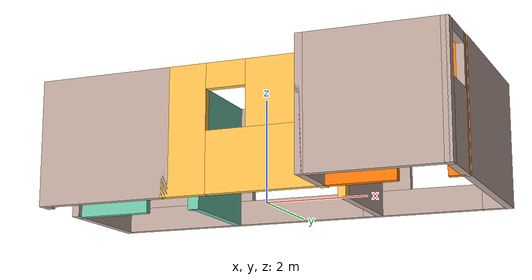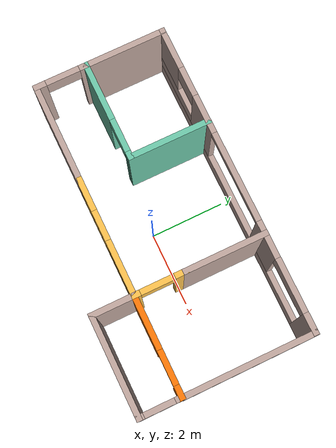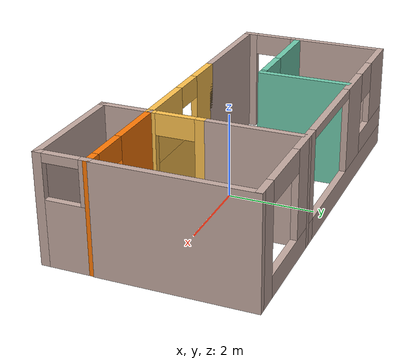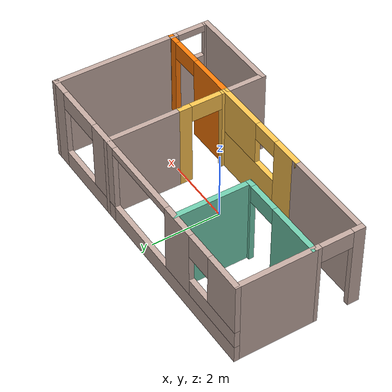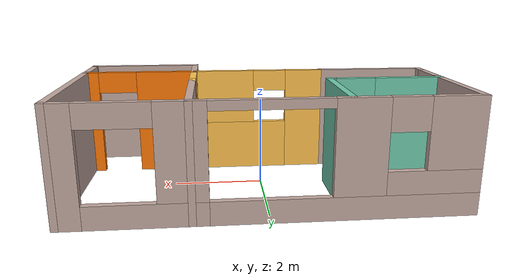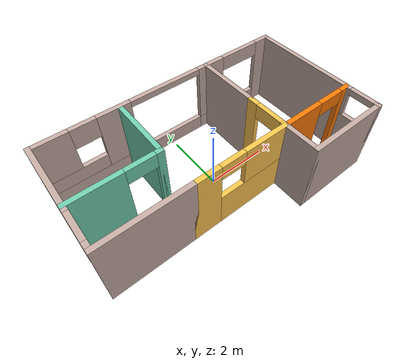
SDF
<?xml version='1.0'?>
<sdf version='1.6'>
  <model name='Building'>
    <pose frame=''>0 0 0 0 -0 0</pose>
    <link name='Wall_16'>
      <collision name='Wall_16_Collision'>
        <geometry>
          <box>
            <size>2.25 0.15 2.5</size>
          </box>
        </geometry>
        <pose frame=''>0 0 1.25 0 -0 0</pose>
      </collision>
      <visual name='Wall_16_Visual'>
        <pose frame=''>0 0 1.25 0 -0 0</pose>
        <geometry>
          <box>
            <size>2.25 0.15 2.5</size>
          </box>
        </geometry>
        <material>
          <script>
            <uri>file://media/materials/scripts/gazebo.material</uri>
            <name>Gazebo/Grey</name>
          </script>
          <ambient>0.760784 0.662745 0.627451 1</ambient>
        </material>
        <meta>
          <layer>0</layer>
        </meta>
      </visual>
      <pose frame=''>-4.15661 1.225 0 0 0 -1.5708</pose>
    </link>
    <link name='Wall_17'>
      <pose frame=''>-2.85661 0.175 0 0 -0 0</pose>
      <visual name='Wall_17_Visual_0'>
        <pose frame=''>-0.564012 0 1.25 0 -0 0</pose>
        <geometry>
          <box>
            <size>1.62197 0.15 2.5</size>
          </box>
        </geometry>
        <material>
          <script>
            <uri>file://media/materials/scripts/gazebo.material</uri>
            <name>Gazebo/Grey</name>
          </script>
          <ambient>0.435294 0.796078 0.67451 1</ambient>
        </material>
        <meta>
          <layer>0</layer>
        </meta>
      </visual>
      <collision name='Wall_17_Collision_0'>
        <geometry>
          <box>
            <size>1.62197 0.15 2.5</size>
          </box>
        </geometry>
        <pose frame=''>-0.564012 0 1.25 0 -0 0</pose>
      </collision>
      <visual name='Wall_17_Visual_1'>
        <pose frame=''>1.26099 0 1.25 0 -0 0</pose>
        <geometry>
          <box>
            <size>0.228025 0.15 2.5</size>
          </box>
        </geometry>
        <material>
          <script>
            <uri>file://media/materials/scripts/gazebo.material</uri>
            <name>Gazebo/Grey</name>
          </script>
          <ambient>0.435294 0.796078 0.67451 1</ambient>
        </material>
        <meta>
          <layer>0</layer>
        </meta>
      </visual>
      <collision name='Wall_17_Collision_1'>
        <geometry>
          <box>
            <size>0.228025 0.15 2.5</size>
          </box>
        </geometry>
        <pose frame=''>1.26099 0 1.25 0 -0 0</pose>
      </collision>
      <visual name='Wall_17_Visual_2'>
        <pose frame=''>0.696975 0 2.25 0 -0 0</pose>
        <geometry>
          <box>
            <size>0.9 0.15 0.5</size>
          </box>
        </geometry>
        <material>
          <script>
            <uri>file://media/materials/scripts/gazebo.material</uri>
            <name>Gazebo/Grey</name>
          </script>
          <ambient>0.435294 0.796078 0.67451 1</ambient>
        </material>
        <meta>
          <layer>0</layer>
        </meta>
      </visual>
      <collision name='Wall_17_Collision_2'>
        <geometry>
          <box>
            <size>0.9 0.15 0.5</size>
          </box>
        </geometry>
        <pose frame=''>0.696975 0 2.25 0 -0 0</pose>
      </collision>
    </link>
    <link name='Wall_19'>
      <pose frame=''>-0.006613 -1.175 0 0 -0 0</pose>
      <visual name='Wall_19_Visual_0'>
        <pose frame=''>-1.16987 0 1.25 0 -0 0</pose>
        <geometry>
          <box>
            <size>0.91025 0.15 2.5</size>
          </box>
        </geometry>
        <material>
          <script>
            <uri>file://media/materials/scripts/gazebo.material</uri>
            <name>Gazebo/Grey</name>
          </script>
          <ambient>1 0.764706 0.305882 1</ambient>
        </material>
        <meta>
          <layer>0</layer>
        </meta>
      </visual>
      <collision name='Wall_19_Collision_0'>
        <geometry>
          <box>
            <size>0.91025 0.15 2.5</size>
          </box>
        </geometry>
        <pose frame=''>-1.16987 0 1.25 0 -0 0</pose>
      </collision>
      <visual name='Wall_19_Visual_1'>
        <pose frame=''>0.455125 0 0.6 0 -0 0</pose>
        <geometry>
          <box>
            <size>2.33975 0.15 1.2</size>
          </box>
        </geometry>
        <material>
          <script>
            <uri>file://media/materials/scripts/gazebo.material</uri>
            <name>Gazebo/Grey</name>
          </script>
          <ambient>1 0.764706 0.305882 1</ambient>
        </material>
        <meta>
          <layer>0</layer>
        </meta>
      </visual>
      <collision name='Wall_19_Collision_1'>
        <geometry>
          <box>
            <size>2.33975 0.15 1.2</size>
          </box>
        </geometry>
        <pose frame=''>0.455125 0 0.6 0 -0 0</pose>
      </collision>
      <visual name='Wall_19_Visual_2'>
        <pose frame=''>0.855125 0 1.85 0 -0 0</pose>
        <geometry>
          <box>
            <size>1.53975 0.15 1.3</size>
          </box>
        </geometry>
        <material>
          <script>
            <uri>file://media/materials/scripts/gazebo.material</uri>
            <name>Gazebo/Grey</name>
          </script>
          <ambient>1 0.764706 0.305882 1</ambient>
        </material>
        <meta>
          <layer>0</layer>
        </meta>
      </visual>
      <collision name='Wall_19_Collision_2'>
        <geometry>
          <box>
            <size>1.53975 0.15 1.3</size>
          </box>
        </geometry>
        <pose frame=''>0.855125 0 1.85 0 -0 0</pose>
      </collision>
      <visual name='Wall_19_Visual_3'>
        <pose frame=''>-0.31475 0 2.25 0 -0 0</pose>
        <geometry>
          <box>
            <size>0.8 0.15 0.5</size>
          </box>
        </geometry>
        <material>
          <script>
            <uri>file://media/materials/scripts/gazebo.material</uri>
            <name>Gazebo/Grey</name>
          </script>
          <ambient>1 0.764706 0.305882 1</ambient>
        </material>
        <meta>
          <layer>0</layer>
        </meta>
      </visual>
      <collision name='Wall_19_Collision_3'>
        <geometry>
          <box>
            <size>0.8 0.15 0.5</size>
          </box>
        </geometry>
        <pose frame=''>-0.31475 0 2.25 0 -0 0</pose>
      </collision>
    </link>
    <link name='Wall_20'>
      <pose frame=''>1.54339 -0.5 0 0 -0 1.5708</pose>
      <visual name='Wall_20_Visual_0'>
        <pose frame=''>-0.634187 0 1.25 0 -0 0</pose>
        <geometry>
          <box>
            <size>0.231625 0.15 2.5</size>
          </box>
        </geometry>
        <material>
          <script>
            <uri>file://media/materials/scripts/gazebo.material</uri>
            <name>Gazebo/Grey</name>
          </script>
          <ambient>1 0.764706 0.305882 1</ambient>
        </material>
        <meta>
          <layer>0</layer>
        </meta>
      </visual>
      <collision name='Wall_20_Collision_0'>
        <geometry>
          <box>
            <size>0.231625 0.15 2.5</size>
          </box>
        </geometry>
        <pose frame=''>-0.634187 0 1.25 0 -0 0</pose>
      </collision>
      <visual name='Wall_20_Visual_1'>
        <pose frame=''>0.565813 0 1.25 0 -0 0</pose>
        <geometry>
          <box>
            <size>0.368375 0.15 2.5</size>
          </box>
        </geometry>
        <material>
          <script>
            <uri>file://media/materials/scripts/gazebo.material</uri>
            <name>Gazebo/Grey</name>
          </script>
          <ambient>1 0.764706 0.305882 1</ambient>
        </material>
        <meta>
          <layer>0</layer>
        </meta>
      </visual>
      <collision name='Wall_20_Collision_1'>
        <geometry>
          <box>
            <size>0.368375 0.15 2.5</size>
          </box>
        </geometry>
        <pose frame=''>0.565813 0 1.25 0 -0 0</pose>
      </collision>
      <visual name='Wall_20_Visual_2'>
        <pose frame=''>-0.068375 0 2.25 0 -0 0</pose>
        <geometry>
          <box>
            <size>0.9 0.15 0.5</size>
          </box>
        </geometry>
        <material>
          <script>
            <uri>file://media/materials/scripts/gazebo.material</uri>
            <name>Gazebo/Grey</name>
          </script>
          <ambient>1 0.764706 0.305882 1</ambient>
        </material>
        <meta>
          <layer>0</layer>
        </meta>
      </visual>
      <collision name='Wall_20_Collision_2'>
        <geometry>
          <box>
            <size>0.9 0.15 0.5</size>
          </box>
        </geometry>
        <pose frame=''>-0.068375 0 2.25 0 -0 0</pose>
      </collision>
    </link>
    <link name='Wall_22'>
      <collision name='Wall_22_Collision'>
        <geometry>
          <box>
            <size>3.5 0.15 2.5</size>
          </box>
        </geometry>
        <pose frame=''>0 0 1.25 0 -0 0</pose>
      </collision>
      <visual name='Wall_22_Visual'>
        <pose frame=''>0 0 1.25 0 -0 0</pose>
        <geometry>
          <box>
            <size>3.5 0.15 2.5</size>
          </box>
        </geometry>
        <material>
          <script>
            <uri>file://media/materials/scripts/gazebo.material</uri>
            <name>Gazebo/Grey</name>
          </script>
          <ambient>0.760784 0.662745 0.627451 1</ambient>
        </material>
        <meta>
          <layer>0</layer>
        </meta>
      </visual>
      <pose frame=''>4.15661 0.6 0 0 -0 1.5708</pose>
    </link>
    <link name='Wall_23'>
      <pose frame=''>-0.006613 2.275 0 0 -0 3.14159</pose>
      <visual name='Wall_23_Visual_0'>
        <pose frame=''>-3.9381 0 1.25 0 -0 0</pose>
        <geometry>
          <box>
            <size>0.573805 0.15 2.5</size>
          </box>
        </geometry>
        <material>
          <script>
            <uri>file://media/materials/scripts/gazebo.material</uri>
            <name>Gazebo/Grey</name>
          </script>
          <ambient>0.760784 0.662745 0.627451 1</ambient>
        </material>
        <meta>
          <layer>0</layer>
        </meta>
      </visual>
      <collision name='Wall_23_Collision_0'>
        <geometry>
          <box>
            <size>0.573805 0.15 2.5</size>
          </box>
        </geometry>
        <pose frame=''>-3.9381 0 1.25 0 -0 0</pose>
      </collision>
      <visual name='Wall_23_Visual_1'>
        <pose frame=''>-2.43037 0 0.25 0 -0 0</pose>
        <geometry>
          <box>
            <size>2.44166 0.15 0.5</size>
          </box>
        </geometry>
        <material>
          <script>
            <uri>file://media/materials/scripts/gazebo.material</uri>
            <name>Gazebo/Grey</name>
          </script>
          <ambient>0.760784 0.662745 0.627451 1</ambient>
        </material>
        <meta>
          <layer>0</layer>
        </meta>
      </visual>
      <collision name='Wall_23_Collision_1'>
        <geometry>
          <box>
            <size>2.44166 0.15 0.5</size>
          </box>
        </geometry>
        <pose frame=''>-2.43037 0 0.25 0 -0 0</pose>
      </collision>
      <visual name='Wall_23_Visual_2'>
        <pose frame=''>1.50773 0 0.25 0 -0 0</pose>
        <geometry>
          <box>
            <size>5.43454 0.15 0.5</size>
          </box>
        </geometry>
        <material>
          <script>
            <uri>file://media/materials/scripts/gazebo.material</uri>
            <name>Gazebo/Grey</name>
          </script>
          <ambient>0.760784 0.662745 0.627451 1</ambient>
        </material>
        <meta>
          <layer>0</layer>
        </meta>
      </visual>
      <collision name='Wall_23_Collision_2'>
        <geometry>
          <box>
            <size>5.43454 0.15 0.5</size>
          </box>
        </geometry>
        <pose frame=''>1.50773 0 0.25 0 -0 0</pose>
      </collision>
      <visual name='Wall_23_Visual_3'>
        <pose frame=''>1.74974 0 1.5 0 -0 0</pose>
        <geometry>
          <box>
            <size>1.06456 0.15 2</size>
          </box>
        </geometry>
        <material>
          <script>
            <uri>file://media/materials/scripts/gazebo.material</uri>
            <name>Gazebo/Grey</name>
          </script>
          <ambient>0.760784 0.662745 0.627451 1</ambient>
        </material>
        <meta>
          <layer>0</layer>
        </meta>
      </visual>
      <collision name='Wall_23_Collision_3'>
        <geometry>
          <box>
            <size>1.06456 0.15 2</size>
          </box>
        </geometry>
        <pose frame=''>1.74974 0 1.5 0 -0 0</pose>
      </collision>
      <visual name='Wall_23_Visual_4'>
        <pose frame=''>3.25351 0 0.75 0 -0 0</pose>
        <geometry>
          <box>
            <size>1.94297 0.15 0.5</size>
          </box>
        </geometry>
        <material>
          <script>
            <uri>file://media/materials/scripts/gazebo.material</uri>
            <name>Gazebo/Grey</name>
          </script>
          <ambient>0.760784 0.662745 0.627451 1</ambient>
        </material>
        <meta>
          <layer>0</layer>
        </meta>
      </visual>
      <collision name='Wall_23_Collision_4'>
        <geometry>
          <box>
            <size>1.94297 0.15 0.5</size>
          </box>
        </geometry>
        <pose frame=''>3.25351 0 0.75 0 -0 0</pose>
      </collision>
      <visual name='Wall_23_Visual_5'>
        <pose frame=''>-1.71037 0 1.5 0 -0 0</pose>
        <geometry>
          <box>
            <size>1.00166 0.15 2</size>
          </box>
        </geometry>
        <material>
          <script>
            <uri>file://media/materials/scripts/gazebo.material</uri>
            <name>Gazebo/Grey</name>
          </script>
          <ambient>0.760784 0.662745 0.627451 1</ambient>
        </material>
        <meta>
          <layer>0</layer>
        </meta>
      </visual>
      <collision name='Wall_23_Collision_5'>
        <geometry>
          <box>
            <size>1.00166 0.15 2</size>
          </box>
        </geometry>
        <pose frame=''>-1.71037 0 1.5 0 -0 0</pose>
      </collision>
      <visual name='Wall_23_Visual_6'>
        <pose frame=''>-1.71037 0 1.5 0 -0 0</pose>
        <geometry>
          <box>
            <size>1.00166 0.15 2</size>
          </box>
        </geometry>
        <material>
          <script>
            <uri>file://media/materials/scripts/gazebo.material</uri>
            <name>Gazebo/Grey</name>
          </script>
          <ambient>0.760784 0.662745 0.627451 1</ambient>
        </material>
        <meta>
          <layer>0</layer>
        </meta>
      </visual>
      <collision name='Wall_23_Collision_6'>
        <geometry>
          <box>
            <size>1.00166 0.15 2</size>
          </box>
        </geometry>
        <pose frame=''>-1.71037 0 1.5 0 -0 0</pose>
      </collision>
      <visual name='Wall_23_Visual_7'>
        <pose frame=''>3.65351 0 1.75 0 -0 0</pose>
        <geometry>
          <box>
            <size>1.14298 0.15 1.5</size>
          </box>
        </geometry>
        <material>
          <script>
            <uri>file://media/materials/scripts/gazebo.material</uri>
            <name>Gazebo/Grey</name>
          </script>
          <ambient>0.760784 0.662745 0.627451 1</ambient>
        </material>
        <meta>
          <layer>0</layer>
        </meta>
      </visual>
      <collision name='Wall_23_Collision_7'>
        <geometry>
          <box>
            <size>1.14298 0.15 1.5</size>
          </box>
        </geometry>
        <pose frame=''>3.65351 0 1.75 0 -0 0</pose>
      </collision>
      <visual name='Wall_23_Visual_8'>
        <pose frame=''>2.68202 0 2.15 0 -0 0</pose>
        <geometry>
          <box>
            <size>0.8 0.15 0.7</size>
          </box>
        </geometry>
        <material>
          <script>
            <uri>file://media/materials/scripts/gazebo.material</uri>
            <name>Gazebo/Grey</name>
          </script>
          <ambient>0.760784 0.662745 0.627451 1</ambient>
        </material>
        <meta>
          <layer>0</layer>
        </meta>
      </visual>
      <collision name='Wall_23_Collision_8'>
        <geometry>
          <box>
            <size>0.8 0.15 0.7</size>
          </box>
        </geometry>
        <pose frame=''>2.68202 0 2.15 0 -0 0</pose>
      </collision>
      <visual name='Wall_23_Visual_9'>
        <pose frame=''>-2.9312 0 2.25 0 -0 0</pose>
        <geometry>
          <box>
            <size>1.44 0.15 0.5</size>
          </box>
        </geometry>
        <material>
          <script>
            <uri>file://media/materials/scripts/gazebo.material</uri>
            <name>Gazebo/Grey</name>
          </script>
          <ambient>0.760784 0.662745 0.627451 1</ambient>
        </material>
        <meta>
          <layer>0</layer>
        </meta>
      </visual>
      <collision name='Wall_23_Collision_9'>
        <geometry>
          <box>
            <size>1.44 0.15 0.5</size>
          </box>
        </geometry>
        <pose frame=''>-2.9312 0 2.25 0 -0 0</pose>
      </collision>
      <visual name='Wall_23_Visual_10'>
        <pose frame=''>0.003963 0 2.4 0 -0 0</pose>
        <geometry>
          <box>
            <size>2.427 0.15 0.2</size>
          </box>
        </geometry>
        <material>
          <script>
            <uri>file://media/materials/scripts/gazebo.material</uri>
            <name>Gazebo/Grey</name>
          </script>
          <ambient>0.760784 0.662745 0.627451 1</ambient>
        </material>
        <meta>
          <layer>0</layer>
        </meta>
      </visual>
      <collision name='Wall_23_Collision_10'>
        <geometry>
          <box>
            <size>2.427 0.15 0.2</size>
          </box>
        </geometry>
        <pose frame=''>0.003963 0 2.4 0 -0 0</pose>
      </collision>
      <visual name='Wall_23_Visual_11'>
        <pose frame=''>0.003963 0 2.4 0 -0 0</pose>
        <geometry>
          <box>
            <size>2.427 0.15 0.2</size>
          </box>
        </geometry>
        <material>
          <script>
            <uri>file://media/materials/scripts/gazebo.material</uri>
            <name>Gazebo/Grey</name>
          </script>
          <ambient>0.760784 0.662745 0.627451 1</ambient>
        </material>
        <meta>
          <layer>0</layer>
        </meta>
      </visual>
      <collision name='Wall_23_Collision_11'>
        <geometry>
          <box>
            <size>2.427 0.15 0.2</size>
          </box>
        </geometry>
        <pose frame=''>0.003963 0 2.4 0 -0 0</pose>
      </collision>
    </link>
    <link name='Wall_25'>
      <pose frame=''>-4.15661 -0.5 0 0 0 -1.5708</pose>
      <visual name='Wall_25_Visual_0'>
        <pose frame=''>-0.618713 0 1.25 0 -0 0</pose>
        <geometry>
          <box>
            <size>0.262575 0.15 2.5</size>
          </box>
        </geometry>
        <material>
          <script>
            <uri>file://media/materials/scripts/gazebo.material</uri>
            <name>Gazebo/Grey</name>
          </script>
          <ambient>0.760784 0.662745 0.627451 1</ambient>
        </material>
        <meta>
          <layer>0</layer>
        </meta>
      </visual>
      <collision name='Wall_25_Collision_0'>
        <geometry>
          <box>
            <size>0.262575 0.15 2.5</size>
          </box>
        </geometry>
        <pose frame=''>-0.618713 0 1.25 0 -0 0</pose>
      </collision>
      <visual name='Wall_25_Visual_1'>
        <pose frame=''>0.581287 0 1.25 0 -0 0</pose>
        <geometry>
          <box>
            <size>0.337425 0.15 2.5</size>
          </box>
        </geometry>
        <material>
          <script>
            <uri>file://media/materials/scripts/gazebo.material</uri>
            <name>Gazebo/Grey</name>
          </script>
          <ambient>0.760784 0.662745 0.627451 1</ambient>
        </material>
        <meta>
          <layer>0</layer>
        </meta>
      </visual>
      <collision name='Wall_25_Collision_1'>
        <geometry>
          <box>
            <size>0.337425 0.15 2.5</size>
          </box>
        </geometry>
        <pose frame=''>0.581287 0 1.25 0 -0 0</pose>
      </collision>
      <visual name='Wall_25_Visual_2'>
        <pose frame=''>-0.037425 0 2.25 0 -0 0</pose>
        <geometry>
          <box>
            <size>0.9 0.15 0.5</size>
          </box>
        </geometry>
        <material>
          <script>
            <uri>file://media/materials/scripts/gazebo.material</uri>
            <name>Gazebo/Grey</name>
          </script>
          <ambient>0.760784 0.662745 0.627451 1</ambient>
        </material>
        <meta>
          <layer>0</layer>
        </meta>
      </visual>
      <collision name='Wall_25_Collision_2'>
        <geometry>
          <box>
            <size>0.9 0.15 0.5</size>
          </box>
        </geometry>
        <pose frame=''>-0.037425 0 2.25 0 -0 0</pose>
      </collision>
    </link>
    <link name='Wall_26'>
      <collision name='Wall_26_Collision'>
        <geometry>
          <box>
            <size>2.75 0.15 2.5</size>
          </box>
        </geometry>
        <pose frame=''>0 0 1.25 0 -0 0</pose>
      </collision>
      <visual name='Wall_26_Visual'>
        <pose frame=''>0 0 1.25 0 -0 0</pose>
        <geometry>
          <box>
            <size>2.75 0.15 2.5</size>
          </box>
        </geometry>
        <material>
          <script>
            <uri>file://media/materials/scripts/gazebo.material</uri>
            <name>Gazebo/Grey</name>
          </script>
          <ambient>0.760784 0.662745 0.627451 1</ambient>
        </material>
        <meta>
          <layer>0</layer>
        </meta>
      </visual>
      <pose frame=''>-2.85661 -1.175 0 0 -0 0</pose>
    </link>
    <link name='Wall_28'>
      <pose frame=''>2.84339 -1.175 0 0 -0 0</pose>
      <visual name='Wall_28_Visual_0'>
        <pose frame=''>-0.636763 0 1.25 0 -0 0</pose>
        <geometry>
          <box>
            <size>1.47647 0.15 2.5</size>
          </box>
        </geometry>
        <material>
          <script>
            <uri>file://media/materials/scripts/gazebo.material</uri>
            <name>Gazebo/Grey</name>
          </script>
          <ambient>0.996078 0.47451 0.0196078 1</ambient>
        </material>
        <meta>
          <layer>0</layer>
        </meta>
      </visual>
      <collision name='Wall_28_Collision_0'>
        <geometry>
          <box>
            <size>1.47647 0.15 2.5</size>
          </box>
        </geometry>
        <pose frame=''>-0.636763 0 1.25 0 -0 0</pose>
      </collision>
      <visual name='Wall_28_Visual_1'>
        <pose frame=''>1.18824 0 1.25 0 -0 0</pose>
        <geometry>
          <box>
            <size>0.373525 0.15 2.5</size>
          </box>
        </geometry>
        <material>
          <script>
            <uri>file://media/materials/scripts/gazebo.material</uri>
            <name>Gazebo/Grey</name>
          </script>
          <ambient>0.996078 0.47451 0.0196078 1</ambient>
        </material>
        <meta>
          <layer>0</layer>
        </meta>
      </visual>
      <collision name='Wall_28_Collision_1'>
        <geometry>
          <box>
            <size>0.373525 0.15 2.5</size>
          </box>
        </geometry>
        <pose frame=''>1.18824 0 1.25 0 -0 0</pose>
      </collision>
      <visual name='Wall_28_Visual_2'>
        <pose frame=''>0.551475 0 2.25 0 -0 0</pose>
        <geometry>
          <box>
            <size>0.9 0.15 0.5</size>
          </box>
        </geometry>
        <material>
          <script>
            <uri>file://media/materials/scripts/gazebo.material</uri>
            <name>Gazebo/Grey</name>
          </script>
          <ambient>0.996078 0.47451 0.0196078 1</ambient>
        </material>
        <meta>
          <layer>0</layer>
        </meta>
      </visual>
      <collision name='Wall_28_Collision_2'>
        <geometry>
          <box>
            <size>0.9 0.15 0.5</size>
          </box>
        </geometry>
        <pose frame=''>0.551475 0 2.25 0 -0 0</pose>
      </collision>
    </link>
    <link name='Wall_31'>
      <collision name='Wall_31_Collision'>
        <geometry>
          <box>
            <size>2.25 0.15 2.5</size>
          </box>
        </geometry>
        <pose frame=''>0 0 1.25 0 -0 0</pose>
      </collision>
      <visual name='Wall_31_Visual'>
        <pose frame=''>0 0 1.25 0 -0 0</pose>
        <geometry>
          <box>
            <size>2.25 0.15 2.5</size>
          </box>
        </geometry>
        <material>
          <script>
            <uri>file://media/materials/scripts/gazebo.material</uri>
            <name>Gazebo/Grey</name>
          </script>
          <ambient>0.435294 0.796078 0.67451 1</ambient>
        </material>
        <meta>
          <layer>0</layer>
        </meta>
      </visual>
      <pose frame=''>-1.55661 1.225 0 0 -0 1.5708</pose>
    </link>
    <link name='Wall_33'>
      <collision name='Wall_33_Collision'>
        <geometry>
          <box>
            <size>2.25 0.15 2.5</size>
          </box>
        </geometry>
        <pose frame=''>0 0 1.25 0 -0 0</pose>
      </collision>
      <visual name='Wall_33_Visual'>
        <pose frame=''>0 0 1.25 0 -0 0</pose>
        <geometry>
          <box>
            <size>2.25 0.15 2.5</size>
          </box>
        </geometry>
        <material>
          <script>
            <uri>file://media/materials/scripts/gazebo.material</uri>
            <name>Gazebo/Grey</name>
          </script>
          <ambient>0.760784 0.662745 0.627451 1</ambient>
        </material>
        <meta>
          <layer>0</layer>
        </meta>
      </visual>
      <pose frame=''>1.54339 1.225 0 0 -0 1.5708</pose>
    </link>
    <link name='Wall_36'>
      <collision name='Wall_36_Collision'>
        <geometry>
          <box>
            <size>1.25 0.15 2.5</size>
          </box>
        </geometry>
        <pose frame=''>0 0 1.25 0 -0 0</pose>
      </collision>
      <visual name='Wall_36_Visual'>
        <pose frame=''>0 0 1.25 0 -0 0</pose>
        <geometry>
          <box>
            <size>1.25 0.15 2.5</size>
          </box>
        </geometry>
        <material>
          <script>
            <uri>file://media/materials/scripts/gazebo.material</uri>
            <name>Gazebo/Grey</name>
          </script>
          <ambient>0.760784 0.662745 0.627451 1</ambient>
        </material>
        <meta>
          <layer>0</layer>
        </meta>
      </visual>
      <pose frame=''>1.54339 -1.725 0 0 0 -1.5708</pose>
    </link>
    <link name='Wall_37'>
      <collision name='Wall_37_Collision'>
        <geometry>
          <box>
            <size>2.75 0.15 2.5</size>
          </box>
        </geometry>
        <pose frame=''>0 0 1.25 0 -0 0</pose>
      </collision>
      <visual name='Wall_37_Visual'>
        <pose frame=''>0 0 1.25 0 -0 0</pose>
        <geometry>
          <box>
            <size>2.75 0.15 2.5</size>
          </box>
        </geometry>
        <material>
          <script>
            <uri>file://media/materials/scripts/gazebo.material</uri>
            <name>Gazebo/Grey</name>
          </script>
          <ambient>0.760784 0.662745 0.627451 1</ambient>
        </material>
        <meta>
          <layer>0</layer>
        </meta>
      </visual>
      <pose frame=''>2.84339 -2.275 0 0 -0 0</pose>
    </link>
    <link name='Wall_38'>
      <pose frame=''>4.14339 -1.725 0 0 -0 1.5708</pose>
      <visual name='Wall_38_Visual_0'>
        <pose frame=''>-0.5227 0 1.25 0 -0 0</pose>
        <geometry>
          <box>
            <size>0.2046 0.15 2.5</size>
          </box>
        </geometry>
        <material>
          <script>
            <uri>file://media/materials/scripts/gazebo.material</uri>
            <name>Gazebo/Grey</name>
          </script>
          <ambient>0.760784 0.662745 0.627451 1</ambient>
        </material>
        <meta>
          <layer>0</layer>
        </meta>
      </visual>
      <collision name='Wall_38_Collision_0'>
        <geometry>
          <box>
            <size>0.2046 0.15 2.5</size>
          </box>
        </geometry>
        <pose frame=''>-0.5227 0 1.25 0 -0 0</pose>
      </collision>
      <visual name='Wall_38_Visual_1'>
        <pose frame=''>0.1023 0 0.75 0 -0 0</pose>
        <geometry>
          <box>
            <size>1.0454 0.15 1.5</size>
          </box>
        </geometry>
        <material>
          <script>
            <uri>file://media/materials/scripts/gazebo.material</uri>
            <name>Gazebo/Grey</name>
          </script>
          <ambient>0.760784 0.662745 0.627451 1</ambient>
        </material>
        <meta>
          <layer>0</layer>
        </meta>
      </visual>
      <collision name='Wall_38_Collision_1'>
        <geometry>
          <box>
            <size>1.0454 0.15 1.5</size>
          </box>
        </geometry>
        <pose frame=''>0.1023 0 0.75 0 -0 0</pose>
      </collision>
      <visual name='Wall_38_Visual_2'>
        <pose frame=''>0.5023 0 2 0 -0 0</pose>
        <geometry>
          <box>
            <size>0.2454 0.15 1</size>
          </box>
        </geometry>
        <material>
          <script>
            <uri>file://media/materials/scripts/gazebo.material</uri>
            <name>Gazebo/Grey</name>
          </script>
          <ambient>0.760784 0.662745 0.627451 1</ambient>
        </material>
        <meta>
          <layer>0</layer>
        </meta>
      </visual>
      <collision name='Wall_38_Collision_2'>
        <geometry>
          <box>
            <size>0.2454 0.15 1</size>
          </box>
        </geometry>
        <pose frame=''>0.5023 0 2 0 -0 0</pose>
      </collision>
      <visual name='Wall_38_Visual_3'>
        <pose frame=''>-0.0204 0 2.4 0 -0 0</pose>
        <geometry>
          <box>
            <size>0.8 0.15 0.2</size>
          </box>
        </geometry>
        <material>
          <script>
            <uri>file://media/materials/scripts/gazebo.material</uri>
            <name>Gazebo/Grey</name>
          </script>
          <ambient>0.760784 0.662745 0.627451 1</ambient>
        </material>
        <meta>
          <layer>0</layer>
        </meta>
      </visual>
      <collision name='Wall_38_Collision_3'>
        <geometry>
          <box>
            <size>0.8 0.15 0.2</size>
          </box>
        </geometry>
        <pose frame=''>-0.0204 0 2.4 0 -0 0</pose>
      </collision>
    </link>
    <static>1</static>
  </model>
</sdf>
